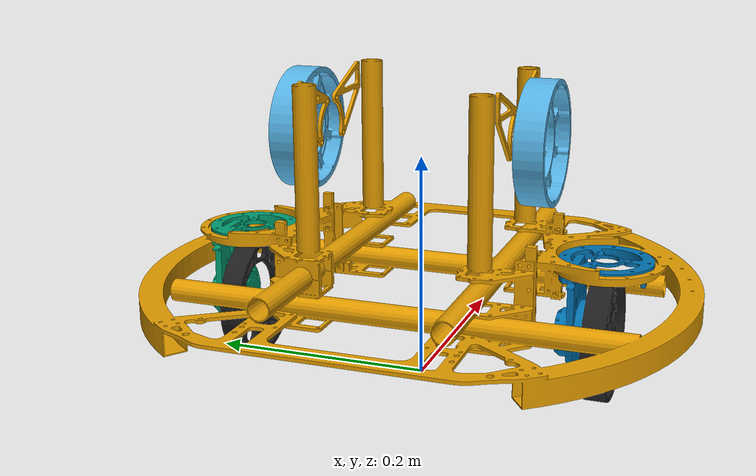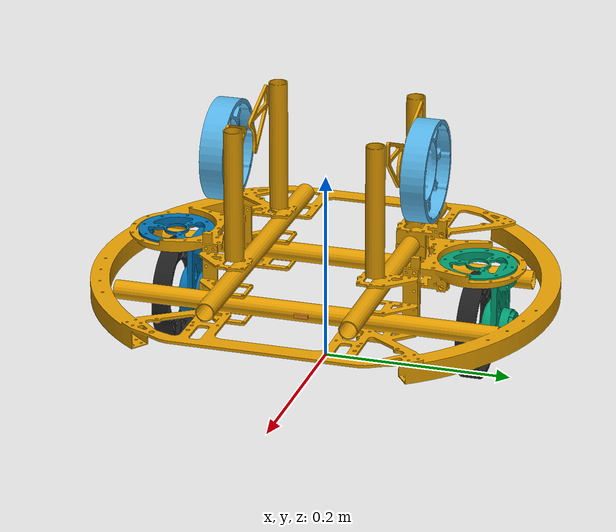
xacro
<?xml version="1.0" encoding="utf-8"?>

<robot xmlns:xacro="http://www.ros.org/wiki/xacro" name="balance">
    <xacro:arg name="load_chassis" default="true"/>
    <xacro:arg name="load_gimbal" default="true"/>
    <xacro:arg name="load_shooter" default="true"/>
    <xacro:arg name="use_simulation" default="true"/>

    <xacro:if value="$(arg load_chassis)">
        <xacro:include filename="$(find robot_description)/urdf/balance/chassis.urdf.xacro"/>
        <xacro:chassis/>
        <xacro:include filename="$(find robot_description)/urdf/common/imu.urdf.xacro"/>
        <xacro:IMU connected_to="base_link" imu_name="base_imu" xyz="0.08 0. 0.08" rpy="0 0 0"/>
        <xacro:if value="$(arg load_gimbal)">

            <xacro:if value="$(arg load_shooter)">
            </xacro:if>
        </xacro:if>
    </xacro:if>

    <xacro:if value="$(arg use_simulation)">
        <gazebo>
            <plugin name="rm_ros_control" filename="librm_robot_hw_sim.so">
                <robotNamespace>/</robotNamespace>
                <robotSimType>rm_gazebo/RmRobotHWSim</robotSimType>
            </plugin>
        </gazebo>
    </xacro:if>

</robot>

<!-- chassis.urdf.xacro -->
<robot xmlns:xacro="http://www.ros.org/wiki/xacro">

    <xacro:include filename="$(find robot_description)/urdf/balance/reaction_wheel.urdf.xacro"/>
    <xacro:include filename="$(find robot_description)/urdf/common/swerve_drive.urdf.xacro"/>

    <!-- https://upload.wikimedia.org/wikipedia/commons/5/52/Wheelbase_and_Track.png -->
    <xacro:property name="wheel_base" value="0.328"/>
    <xacro:property name="pivot_offset_z" value="0.12135"/>

    <xacro:macro name="chassis">

        <link name="base_link">
            <inertial>
                <mass value="6.453809"/>
                <origin xyz="-0.013181 0.000104 0.1638"/>
                <inertia ixx="9.725e-2" ixy="4.574e-5" ixz="7.354e-3" iyy="9.525e-2"
                         iyz="1.021e-5" izz="1.468e-1"/>
            </inertial>
            <visual>
                <origin xyz="0 0 0" rpy="0 0 0"/>
                <geometry>
                    <mesh filename="package://robot_description/meshes/balance/base_link.stl"
                          scale="0.001 .001 0.001"/>
                </geometry>
            </visual>
            <collision>
                <origin xyz="0 0 0" rpy="0 0 0"/>
                <geometry>
                    <mesh filename="package://robot_description/meshes/balance/base_link.stl"
                          scale="0.001 0.001 0.001"/>
                </geometry>
            </collision>
        </link>

        <xacro:reaction_wheel connected_to="base_link"
                              wheel_x_offset="0" wheel_y_offset="0"
                              wheel_z_offset="0.22" mechanical_reduction="-0.166"/>

        <xacro:swerve_drive prefix="left" connected_to="base_link"
                            x_offset="0" y_offset="${wheel_base/2}"
                            z_offset="${pivot_offset_z}"/>

        <xacro:swerve_drive prefix="right" connected_to="base_link"
                            x_offset="0" y_offset="${-wheel_base/2}"
                            z_offset="${pivot_offset_z}"/>

        <xacro:swerve_transmission prefix="left" wheel_reduction="13.733" pivot_offset="0"/>
        <xacro:swerve_transmission prefix="right" wheel_reduction="-13.733" pivot_offset="1.861"/>

    </xacro:macro>

</robot>

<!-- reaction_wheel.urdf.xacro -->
<robot xmlns:xacro="http://www.ros.org/wiki/xacro">

    <xacro:property name="wheel_joint_effort" value="6"/>
    <xacro:property name="wheel_joint_velocity" value="76"/>

    <xacro:macro name="reaction_wheel"
                 params="connected_to wheel_x_offset wheel_y_offset wheel_z_offset mechanical_reduction">
        <!--  link  -->
        <link name="reaction_wheel">
            <visual>
                <geometry>
                    <mesh filename="package://robot_description/meshes/balance/reaction_wheel.stl"
                          scale="0.001 0.001 0.001"/>
                </geometry>
            </visual>
            <inertial>
                <mass value="0.534802"/>
                <origin xyz="-0.000004 0 -0.000001"/>
                <inertia ixx="6.823e-3" ixy="2.316e-18" ixz="26.918e-9" iyy="1.369e-3" iyz="1.098e-17" izz="6.823e-3"/>
            </inertial>
        </link>

        <joint name="reaction_wheel_joint" type="revolute">
            <axis xyz="0 1 0"/>
            <origin xyz="${wheel_x_offset} ${wheel_y_offset} ${wheel_z_offset}" rpy="0 0 0"/>
            <parent link="${connected_to}"/>
            <child link="reaction_wheel"/>
            <dynamics damping="0.0" friction="0.05"/>
            <limit effort="${wheel_joint_effort}" velocity="${wheel_joint_velocity}" lower="-1e16" upper="1e16"/>
        </joint>

        <!-- transmission -->
        <transmission name="reaction_wheel_joint_trans">
            <type>transmission_interface/SimpleTransmission</type>
            <actuator name="reaction_wheel_joint_motor">
                <mechanicalReduction>${mechanical_reduction}</mechanicalReduction>
            </actuator>
            <joint name="reaction_wheel_joint">
                <hardwareInterface>hardware_interface/EffortJointInterface</hardwareInterface>
            </joint>
        </transmission>

    </xacro:macro>

</robot>

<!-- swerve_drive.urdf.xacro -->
<robot xmlns:xacro="http://www.ros.org/wiki/xacro">

    <xacro:macro name="swerve_drive"
                 params="prefix x_offset y_offset z_offset  connected_to">

        <link name="${prefix}_pivot">
            <visual>
                <origin xyz="0 0 0" rpy="0 0 0"/>
                <geometry>
                    <mesh filename="package://robot_description/meshes/common/swerve_pivot.stl"
                          scale="0.001 0.001 0.001"/>
                </geometry>
            </visual>
            <inertial>
                <mass value="0.114131"/>
                <origin xyz="-0.00005 0.017079 -0.041536" rpy="0 0 0"/>
                <inertia ixx="1.335e-4" ixy="26.001e-9" ixz="65.031e-9" iyy="1.372e-4" iyz="20051.742e-9"
                         izz="66866.081e-9"/>
            </inertial>
        </link>

        <joint name="${prefix}_pivot_joint" type="revolute">
            <axis xyz="0 0 1"/>
            <origin xyz="${x_offset} ${y_offset} ${z_offset}" rpy="0 0 0"/>
            <parent link="${connected_to}"/>
            <child link="${prefix}_pivot"/>
            <dynamics damping="0.0" friction="0.1"/>
            <limit effort="1.2" velocity="50" lower="-1e10" upper="1e10"/>
        </joint>

        <link name="${prefix}_wheel">
            <visual>
                <origin xyz="0 0 0" rpy="0 0 0"/>
                <geometry>
                    <mesh filename="package://robot_description/meshes/common/swerve_wheel.stl"
                          scale="0.001 0.001 0.001"/>
                </geometry>
            </visual>
            <inertial>
                <mass value="0.267401"/>
                <origin xyz="-0.000004 0.000125 0.000001" rpy="0 0 0"/>
                <inertia ixx="3.585e-4" ixy="0" ixz="13.459e-9" iyy="6.846e-4" iyz="0"
                         izz="3.584e-4"/>
            </inertial>
            <collision>
                <origin xyz="0 0 0" rpy="${pi/2.} 0 0"/>
                <geometry>
                    <cylinder length="0.02" radius="0.055"/>
                </geometry>
            </collision>
        </link>

        <joint name="${prefix}_wheel_joint" type="revolute">
            <axis xyz="0 1 0"/>
            <origin xyz="0 0 -0.06635" rpy="0 0 0"/>
            <parent link="${prefix}_pivot"/>
            <child link="${prefix}_wheel"/>
            <limit effort="3" velocity="76" lower="-1e10" upper="1e10"/>
            <dynamics damping="0.0" friction="0.05"/>
        </joint>

        <gazebo reference="${prefix}_wheel">
            <mu1 value="1.0"/>
            <mu2 value="1.0"/>
            <kp value="1000000.0"/>
            <kd value="100.0"/>
            <material>Gazebo/Black</material>
        </gazebo>
    </xacro:macro>

    <xacro:macro name="swerve_transmission" params="prefix wheel_reduction  pivot_offset">

        <transmission name="${prefix}_pivot_trans">
            <type>transmission_interface/SimpleTransmission</type>
            <actuator name="${prefix}_pivot_motor">
                <mechanicalReduction>-1</mechanicalReduction>
            </actuator>
            <joint name="${prefix}_pivot_joint">
                <offset>${pivot_offset}</offset>
                <hardwareInterface>hardware_interface/EffortJointInterface</hardwareInterface>
            </joint>
        </transmission>

        <transmission name="${prefix}_wheel_trans">
            <type>transmission_interface/SimpleTransmission</type>
            <actuator name="${prefix}_wheel_motor">
                <mechanicalReduction>${wheel_reduction}</mechanicalReduction>
            </actuator>
            <joint name="${prefix}_wheel_joint">
                <hardwareInterface>hardware_interface/EffortJointInterface</hardwareInterface>
            </joint>
        </transmission>
    </xacro:macro>

</robot>

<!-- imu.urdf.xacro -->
<robot xmlns:xacro="http://www.ros.org/wiki/xacro" name="imu">
    <xacro:macro name="IMU" params="connected_to imu_name xyz:='0 0 0' rpy:='0 0 0' ">
        <!-- Imu is fixed to the base link -->
        <joint name="${imu_name}_joint" type="fixed">
            <origin xyz="${xyz}" rpy="${rpy}"/>
            <parent link="${connected_to}"/>
            <child link="${imu_name}"/>
        </joint>
        <!-- Imu link -->
        <link name="${imu_name}">
            <inertial>
                <mass value="0.01"/>
                <origin rpy="0 0 0" xyz="0 0 0"/>
                <inertia ixx="0.000001" ixy="0" ixz="0" iyy="0.000001" iyz="0" izz="0.000001"/>
            </inertial>
            <visual>
                <origin rpy="0 0 0" xyz="0 0 0"/>
                <geometry>
                    <box size="0.015 0.015 0.004"/>
                </geometry>
            </visual>
            <material name="orange">
                <color rgba="255 108 10 255"/>
            </material>
        </link>
        <gazebo reference="${imu_name}">
            <material>Gazebo/Orange</material>
        </gazebo>
        <gazebo reference="${imu_name}_joint">
            <disableFixedJointLumping>true</disableFixedJointLumping>
        </gazebo>
    </xacro:macro>
</robot>
